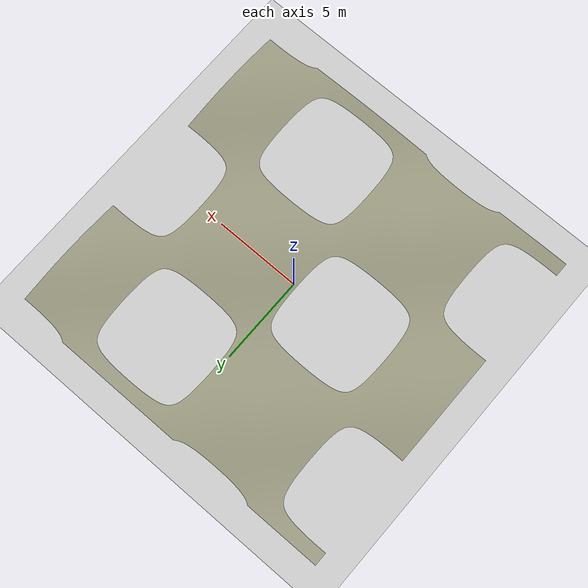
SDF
<?xml version="1.0" ?>
<sdf version="1.8">
  <world name="default">

    <plugin
      filename="gz-sim-physics-system"
      name="gz::sim::systems::Physics">
    </plugin>

    <plugin
      filename="gz-sim-user-commands-system"
      name="gz::sim::systems::UserCommands">
    </plugin>

    <plugin
      filename="gz-sim-scene-broadcaster-system"
      name="gz::sim::systems::SceneBroadcaster">
    </plugin>

    <plugin
      filename="gz-sim-sensors-system"
      name="gz::sim::systems::Sensors">
      <render_engine>ogre2</render_engine>
    </plugin>

    <plugin filename="gz-sim-imu-system"
      name="gz::sim::systems::Imu">
    </plugin>

    <light type="directional" name="sun">
      <cast_shadows>true</cast_shadows>
      <pose>0 0 20 0 0 0</pose>
      <diffuse>1 1 1 1</diffuse>
      <specular>0.5 0.5 0.5 1</specular>
      <attenuation>
        <range>100</range>
        <constant>0.9</constant>
        <linear>0.01</linear>
        <quadratic>0.001</quadratic>
      </attenuation>
      <direction>-0.5 0.1 -0.9</direction>
    </light>

    <!-- Рельеф: модель terrain (mesh 20x20 м из карты высот).
         Сценарий выбирается: python3 scripts/select_terrain.py s3_hills -->
    <include>
      <uri>model://terrain</uri>
      <name>terrain</name>
      <pose>0 0 0 0 0 0</pose>
    </include>

    <!-- Плоскость под рельефом (вне 20x20) -->
    <model name="ground_plane">
      <static>true</static>
      <link name="link">
        <collision name="collision">
          <geometry>
            <plane>
              <normal>0 0 1</normal>
              <size>100 100</size>
            </plane>
          </geometry>
          <surface>
            <friction>
              <ode>
                <mu>1.0</mu>
                <mu2>1.0</mu2>
              </ode>
            </friction>
          </surface>
        </collision>
        <visual name="visual">
          <geometry>
            <plane>
              <normal>0 0 1</normal>
              <size>100 100</size>
            </plane>
          </geometry>
        </visual>
      </link>
    </model>

  </world>
</sdf>

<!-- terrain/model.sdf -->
<sdf version="1.8">
  <model name="terrain">
    <static>true</static>
    <link name="link">
      <collision name="collision">
        <geometry>
          <mesh>
            <uri>model://terrain/terrain.obj</uri>
          </mesh>
        </geometry>
      </collision>
      <visual name="visual">
        <geometry>
          <mesh>
            <uri>model://terrain/terrain.obj</uri>
          </mesh>
        </geometry>
        <material>
          <diffuse>0.6 0.6 0.5 1</diffuse>
          <ambient>0.4 0.4 0.3 1</ambient>
        </material>
      </visual>
    </link>
  </model>
</sdf>
